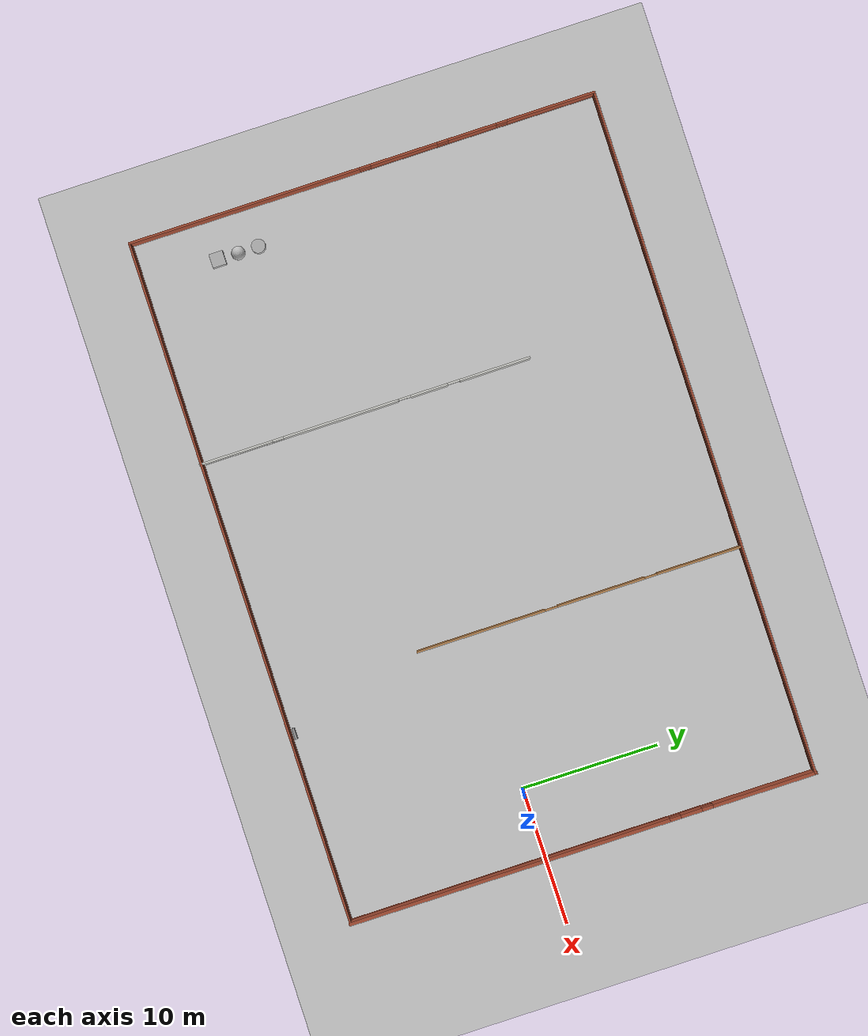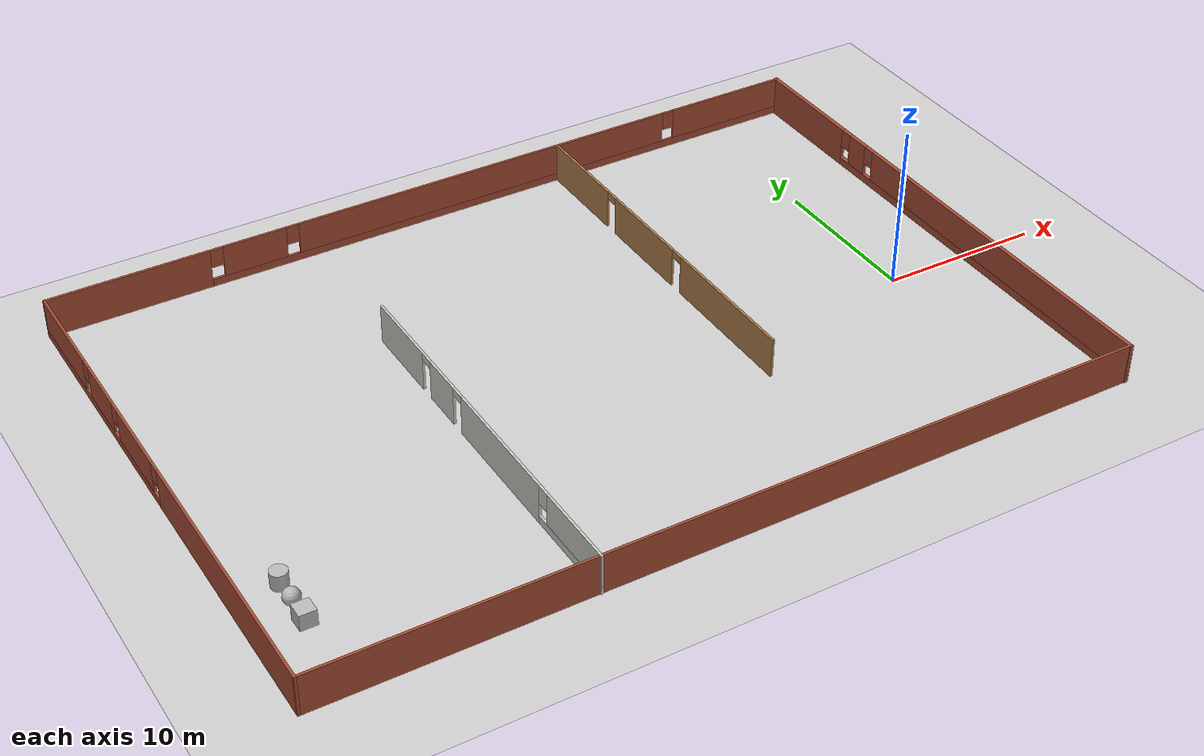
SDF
<sdf version="1.6">
 <world name="default">
  <light name="sun" type="directional">
   <pose>0 0 10 0 -0 0</pose>
   <diffuse>0.8 0.8 0.8 1</diffuse>
   <specular>0.1 0.1 0.1 1</specular>
   <attenuation>
    <range>1000</range>
    <constant>0.9</constant>
    <linear>0.01</linear>
    <quadratic>0.001</quadratic>
   </attenuation>
   <direction>-0.5 0.5 -1</direction>
  </light>
  <model name="ground_plane">
   <static>1</static>
   <link name="link">
    <collision name="collision">
     <geometry><plane><normal>0 0 1</normal><size>100 100</size></plane></geometry>
     <surface><friction><ode><mu>100</mu><mu2>50</mu2></ode></friction></surface>
    </collision>
    <visual name="visual">
     <cast_shadows>0</cast_shadows>
     <geometry><plane><normal>0 0 1</normal><size>100 100</size></plane></geometry>
     <material>
      <script><uri>file://media/materials/scripts/gazebo.material</uri><name>Gazebo/Grey</name></script>
     </material>
    </visual>
   </link>
  </model>
  <gravity>0 0 -9.8</gravity>
  <magnetic_field>6e-06 2.3e-05 -4.2e-05</magnetic_field>
  <atmosphere type="adiabatic"/>
  <physics name="default_physics" default="0" type="ode">
   <max_step_size>0.001</max_step_size>
   <real_time_factor>1</real_time_factor>
   <real_time_update_rate>1000</real_time_update_rate>
  </physics>
  <scene><ambient>0.4 0.4 0.4 1</ambient><background>0.7 0.7 0.7 1</background><shadows>1</shadows></scene>
  <spherical_coordinates>
   <surface_model>EARTH_WGS84</surface_model>
   <latitude_deg>0</latitude_deg>
   <longitude_deg>0</longitude_deg>
   <elevation>0</elevation>
   <heading_deg>0</heading_deg>
  </spherical_coordinates>
  <model name="building_2">
   <pose>-19.7992 2.75157 0 0 -0 0</pose>
   <link name="Wall_0">
    <pose>-24.9808 0.000427 0 0 -0 1.5708</pose>
    <visual name="Wall_0_Visual_0">
     <pose>-8.65096 0 1.25 0 -0 0</pose>
     <geometry><box><size>16.9481 0.15 2.5</size></box></geometry>
     <material>
      <script><uri>file://media/materials/scripts/gazebo.material</uri><name>Gazebo/Bricks</name></script>
      <ambient>1 1 1 1</ambient>
     </material>
    </visual>
    <collision name="Wall_0_Collision_0">
     <geometry><box><size>16.9481 0.15 2.5</size></box></geometry>
     <pose>-8.65096 0 1.25 0 -0 0</pose>
    </collision>
    <visual name="Wall_0_Visual_1">
     <pose>8.47404 0 0.25 0 -0 0</pose>
     <geometry><box><size>17.3019 0.15 0.5</size></box></geometry>
     <material>
      <script><uri>file://media/materials/scripts/gazebo.material</uri><name>Gazebo/Bricks</name></script>
      <ambient>1 1 1 1</ambient>
     </material>
    </visual>
    <collision name="Wall_0_Collision_1">
     <geometry><box><size>17.3019 0.15 0.5</size></box></geometry>
     <pose>8.47404 0 0.25 0 -0 0</pose>
    </collision>
    <visual name="Wall_0_Visual_2">
     <pose>3.06943 0 1.5 0 -0 0</pose>
     <geometry><box><size>4.89271 0.15 2</size></box></geometry>
     <material>
      <script><uri>file://media/materials/scripts/gazebo.material</uri><name>Gazebo/Bricks</name></script>
      <ambient>1 1 1 1</ambient>
     </material>
    </visual>
    <collision name="Wall_0_Collision_2">
     <geometry><box><size>4.89271 0.15 2</size></box></geometry>
     <pose>3.06943 0 1.5 0 -0 0</pose>
    </collision>
    <visual name="Wall_0_Visual_3">
     <pose>8.08149 0 1.5 0 -0 0</pose>
     <geometry><box><size>3.53141 0.15 2</size></box></geometry>
     <material>
      <script><uri>file://media/materials/scripts/gazebo.material</uri><name>Gazebo/Bricks</name></script>
      <ambient>1 1 1 1</ambient>
     </material>
    </visual>
    <collision name="Wall_0_Collision_3">
     <geometry><box><size>3.53141 0.15 2</size></box></geometry>
     <pose>8.08149 0 1.5 0 -0 0</pose>
    </collision>
    <visual name="Wall_0_Visual_4">
     <pose>13.8861 0 1.5 0 -0 0</pose>
     <geometry><box><size>6.47781 0.15 2</size></box></geometry>
     <material>
      <script><uri>file://media/materials/scripts/gazebo.material</uri><name>Gazebo/Bricks</name></script>
      <ambient>1 1 1 1</ambient>
     </material>
    </visual>
    <collision name="Wall_0_Collision_4">
     <geometry><box><size>6.47781 0.15 2</size></box></geometry>
     <pose>13.8861 0 1.5 0 -0 0</pose>
    </collision>
    <visual name="Wall_0_Visual_5">
     <pose>0.223075 0 1.9 0 -0 0</pose>
     <geometry><box><size>0.8 0.15 1.2</size></box></geometry>
     <material>
      <script><uri>file://media/materials/scripts/gazebo.material</uri><name>Gazebo/Bricks</name></script>
      <ambient>1 1 1 1</ambient>
     </material>
    </visual>
    <collision name="Wall_0_Collision_5">
     <geometry><box><size>0.8 0.15 1.2</size></box></geometry>
     <pose>0.223075 0 1.9 0 -0 0</pose>
    </collision>
    <visual name="Wall_0_Visual_6">
     <pose>5.91578 0 1.9 0 -0 0</pose>
     <geometry><box><size>0.8 0.15 1.2</size></box></geometry>
     <material>
      <script><uri>file://media/materials/scripts/gazebo.material</uri><name>Gazebo/Bricks</name></script>
      <ambient>1 1 1 1</ambient>
     </material>
    </visual>
    <collision name="Wall_0_Collision_6">
     <geometry><box><size>0.8 0.15 1.2</size></box></geometry>
     <pose>5.91578 0 1.9 0 -0 0</pose>
    </collision>
    <visual name="Wall_0_Visual_7">
     <pose>10.2472 0 1.9 0 -0 0</pose>
     <geometry><box><size>0.8 0.15 1.2</size></box></geometry>
     <material>
      <script><uri>file://media/materials/scripts/gazebo.material</uri><name>Gazebo/Bricks</name></script>
      <ambient>1 1 1 1</ambient>
     </material>
    </visual>
    <collision name="Wall_0_Collision_7">
     <geometry><box><size>0.8 0.15 1.2</size></box></geometry>
     <pose>10.2472 0 1.9 0 -0 0</pose>
    </collision>
   </link>
   <link name="Wall_1">
    <pose>-0.02484 17.0504 0 0 -0 0</pose>
    <visual name="Wall_1_Visual_0">
     <pose>-20.0058 0 1.25 0 -0 0</pose>
     <geometry><box><size>10.0505 0.15 2.5</size></box></geometry>
     <material>
      <script><uri>file://media/materials/scripts/gazebo.material</uri><name>Gazebo/Bricks</name></script>
      <ambient>1 1 1 1</ambient>
     </material>
    </visual>
    <collision name="Wall_1_Collision_0">
     <geometry><box><size>10.0505 0.15 2.5</size></box></geometry>
     <pose>-20.0058 0 1.25 0 -0 0</pose>
    </collision>
    <visual name="Wall_1_Visual_1">
     <pose>5.02523 0 0.25 0 -0 0</pose>
     <geometry><box><size>40.0115 0.15 0.5</size></box></geometry>
     <material>
      <script><uri>file://media/materials/scripts/gazebo.material</uri><name>Gazebo/Bricks</name></script>
      <ambient>1 1 1 1</ambient>
     </material>
    </visual>
    <collision name="Wall_1_Collision_1">
     <geometry><box><size>40.0115 0.15 0.5</size></box></geometry>
     <pose>5.02523 0 0.25 0 -0 0</pose>
    </collision>
    <visual name="Wall_1_Visual_2">
     <pose>-12.1673 0 1.5 0 -0 0</pose>
     <geometry><box><size>4.02643 0.15 2</size></box></geometry>
     <material>
      <script><uri>file://media/materials/scripts/gazebo.material</uri><name>Gazebo/Bricks</name></script>
      <ambient>1 1 1 1</ambient>
     </material>
    </visual>
    <collision name="Wall_1_Collision_2">
     <geometry><box><size>4.02643 0.15 2</size></box></geometry>
     <pose>-12.1673 0 1.5 0 -0 0</pose>
    </collision>
    <visual name="Wall_1_Visual_3">
     <pose>3.36386 0 1.5 0 -0 0</pose>
     <geometry><box><size>25.436 0.15 2</size></box></geometry>
     <material>
      <script><uri>file://media/materials/scripts/gazebo.material</uri><name>Gazebo/Bricks</name></script>
      <ambient>1 1 1 1</ambient>
     </material>
    </visual>
    <collision name="Wall_1_Collision_3">
     <geometry><box><size>25.436 0.15 2</size></box></geometry>
     <pose>3.36386 0 1.5 0 -0 0</pose>
    </collision>
    <visual name="Wall_1_Visual_4">
     <pose>20.9564 0 1.5 0 -0 0</pose>
     <geometry><box><size>8.14916 0.15 2</size></box></geometry>
     <material>
      <script><uri>file://media/materials/scripts/gazebo.material</uri><name>Gazebo/Bricks</name></script>
      <ambient>1 1 1 1</ambient>
     </material>
    </visual>
    <collision name="Wall_1_Collision_4">
     <geometry><box><size>8.14916 0.15 2</size></box></geometry>
     <pose>20.9564 0 1.5 0 -0 0</pose>
    </collision>
    <visual name="Wall_1_Visual_5">
     <pose>-14.5805 0 1.9 0 -0 0</pose>
     <geometry><box><size>0.8 0.15 1.2</size></box></geometry>
     <material>
      <script><uri>file://media/materials/scripts/gazebo.material</uri><name>Gazebo/Bricks</name></script>
      <ambient>1 1 1 1</ambient>
     </material>
    </visual>
    <collision name="Wall_1_Collision_5">
     <geometry><box><size>0.8 0.15 1.2</size></box></geometry>
     <pose>-14.5805 0 1.9 0 -0 0</pose>
    </collision>
    <visual name="Wall_1_Visual_6">
     <pose>-9.75412 0 1.9 0 -0 0</pose>
     <geometry><box><size>0.8 0.15 1.2</size></box></geometry>
     <material>
      <script><uri>file://media/materials/scripts/gazebo.material</uri><name>Gazebo/Bricks</name></script>
      <ambient>1 1 1 1</ambient>
     </material>
    </visual>
    <collision name="Wall_1_Collision_6">
     <geometry><box><size>0.8 0.15 1.2</size></box></geometry>
     <pose>-9.75412 0 1.9 0 -0 0</pose>
    </collision>
    <visual name="Wall_1_Visual_7">
     <pose>16.4818 0 1.9 0 -0 0</pose>
     <geometry><box><size>0.8 0.15 1.2</size></box></geometry>
     <material>
      <script><uri>file://media/materials/scripts/gazebo.material</uri><name>Gazebo/Bricks</name></script>
      <ambient>1 1 1 1</ambient>
     </material>
    </visual>
    <collision name="Wall_1_Collision_7">
     <geometry><box><size>0.8 0.15 1.2</size></box></geometry>
     <pose>16.4818 0 1.9 0 -0 0</pose>
    </collision>
   </link>
   <link name="Wall_2">
    <pose>24.9312 0.000427 0 0 0 -1.5708</pose>
    <visual name="Wall_2_Visual_0">
     <pose>-13.3542 0 1.25 0 -0 0</pose>
     <geometry><box><size>7.6416 0.25 2.5</size></box></geometry>
     <material>
      <script><uri>file://media/materials/scripts/gazebo.material</uri><name>Gazebo/Bricks</name></script>
      <ambient>1 1 1 1</ambient>
     </material>
    </visual>
    <collision name="Wall_2_Collision_0">
     <geometry><box><size>7.6416 0.25 2.5</size></box></geometry>
     <pose>-13.3542 0 1.25 0 -0 0</pose>
    </collision>
    <visual name="Wall_2_Visual_1">
     <pose>3.8208 0 0.25 0 -0 0</pose>
     <geometry><box><size>26.7084 0.25 0.5</size></box></geometry>
     <material>
      <script><uri>file://media/materials/scripts/gazebo.material</uri><name>Gazebo/Bricks</name></script>
      <ambient>1 1 1 1</ambient>
     </material>
    </visual>
    <collision name="Wall_2_Collision_1">
     <geometry><box><size>26.7084 0.25 0.5</size></box></geometry>
     <pose>3.8208 0 0.25 0 -0 0</pose>
    </collision>
    <visual name="Wall_2_Visual_2">
     <pose>-7.95773 0 1.5 0 -0 0</pose>
     <geometry><box><size>1.55134 0.25 2</size></box></geometry>
     <material>
      <script><uri>file://media/materials/scripts/gazebo.material</uri><name>Gazebo/Bricks</name></script>
      <ambient>1 1 1 1</ambient>
     </material>
    </visual>
    <collision name="Wall_2_Collision_2">
     <geometry><box><size>1.55134 0.25 2</size></box></geometry>
     <pose>-7.95773 0 1.5 0 -0 0</pose>
    </collision>
    <visual name="Wall_2_Visual_3">
     <pose>5.39647 0 1.5 0 -0 0</pose>
     <geometry><box><size>23.5571 0.25 2</size></box></geometry>
     <material>
      <script><uri>file://media/materials/scripts/gazebo.material</uri><name>Gazebo/Bricks</name></script>
      <ambient>1 1 1 1</ambient>
     </material>
    </visual>
    <collision name="Wall_2_Collision_3">
     <geometry><box><size>23.5571 0.25 2</size></box></geometry>
     <pose>5.39647 0 1.5 0 -0 0</pose>
    </collision>
    <visual name="Wall_2_Visual_4">
     <pose>-9.1334 0 1.9 0 -0 0</pose>
     <geometry><box><size>0.8 0.25 1.2</size></box></geometry>
     <material>
      <script><uri>file://media/materials/scripts/gazebo.material</uri><name>Gazebo/Bricks</name></script>
      <ambient>1 1 1 1</ambient>
     </material>
    </visual>
    <collision name="Wall_2_Collision_4">
     <geometry><box><size>0.8 0.25 1.2</size></box></geometry>
     <pose>-9.1334 0 1.9 0 -0 0</pose>
    </collision>
    <visual name="Wall_2_Visual_5">
     <pose>-6.78207 0 1.9 0 -0 0</pose>
     <geometry><box><size>0.8 0.25 1.2</size></box></geometry>
     <material>
      <script><uri>file://media/materials/scripts/gazebo.material</uri><name>Gazebo/Bricks</name></script>
      <ambient>1 1 1 1</ambient>
     </material>
    </visual>
    <collision name="Wall_2_Collision_5">
     <geometry><box><size>0.8 0.25 1.2</size></box></geometry>
     <pose>-6.78207 0 1.9 0 -0 0</pose>
    </collision>
   </link>
   <link name="Wall_3">
    <collision name="Wall_3_Collision">
     <geometry><box><size>50.0626 0.15 2.5</size></box></geometry>
     <pose>0 0 1.25 0 -0 0</pose>
    </collision>
    <visual name="Wall_3_Visual">
     <pose>0 0 1.25 0 -0 0</pose>
     <geometry><box><size>50.0626 0.15 2.5</size></box></geometry>
     <material>
      <script><uri>file://media/materials/scripts/gazebo.material</uri><name>Gazebo/Bricks</name></script>
      <ambient>1 1 1 1</ambient>
     </material>
    </visual>
    <pose>-0.02484 -17.0496 0 0 -0 3.14159</pose>
   </link>
   <link name="Wall_5">
    <pose>-8.79201 -5.05043 0 0 0 -1.5708</pose>
    <visual name="Wall_5_Visual_0">
     <pose>-9.54324 0 1.25 0 -0 0</pose>
     <geometry><box><size>5.16353 0.15 2.5</size></box></geometry>
     <material>
      <script><uri>file://media/materials/scripts/gazebo.material</uri><name>Gazebo/CeilingTiled</name></script>
      <ambient>1 1 1 1</ambient>
     </material>
    </visual>
    <collision name="Wall_5_Collision_0">
     <geometry><box><size>5.16353 0.15 2.5</size></box></geometry>
     <pose>-9.54324 0 1.25 0 -0 0</pose>
    </collision>
    <visual name="Wall_5_Visual_1">
     <pose>-4.71703 0 1.25 0 -0 0</pose>
     <geometry><box><size>2.68888 0.15 2.5</size></box></geometry>
     <material>
      <script><uri>file://media/materials/scripts/gazebo.material</uri><name>Gazebo/CeilingTiled</name></script>
      <ambient>1 1 1 1</ambient>
     </material>
    </visual>
    <collision name="Wall_5_Collision_1">
     <geometry><box><size>2.68888 0.15 2.5</size></box></geometry>
     <pose>-4.71703 0 1.25 0 -0 0</pose>
    </collision>
    <visual name="Wall_5_Visual_2">
     <pose>1.7432 0 1.25 0 -0 0</pose>
     <geometry><box><size>8.43159 0.15 2.5</size></box></geometry>
     <material>
      <script><uri>file://media/materials/scripts/gazebo.material</uri><name>Gazebo/CeilingTiled</name></script>
      <ambient>1 1 1 1</ambient>
     </material>
    </visual>
    <collision name="Wall_5_Collision_2">
     <geometry><box><size>8.43159 0.15 2.5</size></box></geometry>
     <pose>1.7432 0 1.25 0 -0 0</pose>
    </collision>
    <visual name="Wall_5_Visual_3">
     <pose>9.042 0 0.25 0 -0 0</pose>
     <geometry><box><size>6.166 0.15 0.5</size></box></geometry>
     <material>
      <script><uri>file://media/materials/scripts/gazebo.material</uri><name>Gazebo/CeilingTiled</name></script>
      <ambient>1 1 1 1</ambient>
     </material>
    </visual>
    <collision name="Wall_5_Collision_3">
     <geometry><box><size>6.166 0.15 0.5</size></box></geometry>
     <pose>9.042 0 0.25 0 -0 0</pose>
    </collision>
    <visual name="Wall_5_Visual_4">
     <pose>9.442 0 1.5 0 -0 0</pose>
     <geometry><box><size>5.366 0.15 2</size></box></geometry>
     <material>
      <script><uri>file://media/materials/scripts/gazebo.material</uri><name>Gazebo/CeilingTiled</name></script>
      <ambient>1 1 1 1</ambient>
     </material>
    </visual>
    <collision name="Wall_5_Collision_4">
     <geometry><box><size>5.366 0.15 2</size></box></geometry>
     <pose>9.442 0 1.5 0 -0 0</pose>
    </collision>
    <visual name="Wall_5_Visual_5">
     <pose>6.359 0 1.9 0 -0 0</pose>
     <geometry><box><size>0.8 0.15 1.2</size></box></geometry>
     <material>
      <script><uri>file://media/materials/scripts/gazebo.material</uri><name>Gazebo/CeilingTiled</name></script>
      <ambient>1 1 1 1</ambient>
     </material>
    </visual>
    <collision name="Wall_5_Collision_5">
     <geometry><box><size>0.8 0.15 1.2</size></box></geometry>
     <pose>6.359 0 1.9 0 -0 0</pose>
    </collision>
    <visual name="Wall_5_Visual_6">
     <pose>-6.51147 0 2.25 0 -0 0</pose>
     <geometry><box><size>0.9 0.15 0.5</size></box></geometry>
     <material>
      <script><uri>file://media/materials/scripts/gazebo.material</uri><name>Gazebo/CeilingTiled</name></script>
      <ambient>1 1 1 1</ambient>
     </material>
    </visual>
    <collision name="Wall_5_Collision_6">
     <geometry><box><size>0.9 0.15 0.5</size></box></geometry>
     <pose>-6.51147 0 2.25 0 -0 0</pose>
    </collision>
    <visual name="Wall_5_Visual_7">
     <pose>-2.92259 0 2.25 0 -0 0</pose>
     <geometry><box><size>0.9 0.15 0.5</size></box></geometry>
     <material>
      <script><uri>file://media/materials/scripts/gazebo.material</uri><name>Gazebo/CeilingTiled</name></script>
      <ambient>1 1 1 1</ambient>
     </material>
    </visual>
    <collision name="Wall_5_Collision_7">
     <geometry><box><size>0.9 0.15 0.5</size></box></geometry>
     <pose>-2.92259 0 2.25 0 -0 0</pose>
    </collision>
   </link>
   <link name="Wall_7">
    <pose>8.33244 5.08792 0 0 0 -1.5708</pose>
    <visual name="Wall_7_Visual_0">
     <pose>-8.80423 0 1.25 0 -0 0</pose>
     <geometry><box><size>6.14155 0.15 2.5</size></box></geometry>
     <material>
      <script><uri>file://media/materials/scripts/gazebo.material</uri><name>Gazebo/Wood</name></script>
      <ambient>1 1 1 1</ambient>
     </material>
    </visual>
    <collision name="Wall_7_Collision_0">
     <geometry><box><size>6.14155 0.15 2.5</size></box></geometry>
     <pose>-8.80423 0 1.25 0 -0 0</pose>
    </collision>
    <visual name="Wall_7_Visual_1">
     <pose>-1.63269 0 1.25 0 -0 0</pose>
     <geometry><box><size>6.40152 0.15 2.5</size></box></geometry>
     <material>
      <script><uri>file://media/materials/scripts/gazebo.material</uri><name>Gazebo/Wood</name></script>
      <ambient>1 1 1 1</ambient>
     </material>
    </visual>
    <collision name="Wall_7_Collision_1">
     <geometry><box><size>6.40152 0.15 2.5</size></box></geometry>
     <pose>-1.63269 0 1.25 0 -0 0</pose>
    </collision>
    <visual name="Wall_7_Visual_2">
     <pose>7.17153 0 1.25 0 -0 0</pose>
     <geometry><box><size>9.40693 0.15 2.5</size></box></geometry>
     <material>
      <script><uri>file://media/materials/scripts/gazebo.material</uri><name>Gazebo/Wood</name></script>
      <ambient>1 1 1 1</ambient>
     </material>
    </visual>
    <collision name="Wall_7_Collision_2">
     <geometry><box><size>9.40693 0.15 2.5</size></box></geometry>
     <pose>7.17153 0 1.25 0 -0 0</pose>
    </collision>
    <visual name="Wall_7_Visual_3">
     <pose>-5.28345 0 2.25 0 -0 0</pose>
     <geometry><box><size>0.9 0.15 0.5</size></box></geometry>
     <material>
      <script><uri>file://media/materials/scripts/gazebo.material</uri><name>Gazebo/Wood</name></script>
      <ambient>1 1 1 1</ambient>
     </material>
    </visual>
    <collision name="Wall_7_Collision_3">
     <geometry><box><size>0.9 0.15 0.5</size></box></geometry>
     <pose>-5.28345 0 2.25 0 -0 0</pose>
    </collision>
    <visual name="Wall_7_Visual_4">
     <pose>2.01807 0 2.25 0 -0 0</pose>
     <geometry><box><size>0.9 0.15 0.5</size></box></geometry>
     <material>
      <script><uri>file://media/materials/scripts/gazebo.material</uri><name>Gazebo/Wood</name></script>
      <ambient>1 1 1 1</ambient>
     </material>
    </visual>
    <collision name="Wall_7_Collision_4">
     <geometry><box><size>0.9 0.15 0.5</size></box></geometry>
     <pose>2.01807 0 2.25 0 -0 0</pose>
    </collision>
   </link>
   <link name="Window_5">
    <collision name="Window_5_Collision">
     <geometry><box><size>0.8 0.17 0.8</size></box></geometry>
     <pose>0 0 0.4 0 -0 0</pose>
    </collision>
    <visual name="Window_5_Visual">
     <pose>0 0 0.4 0 -0 0</pose>
     <geometry><box><size>0.8 0.17 0.8</size></box></geometry>
     <material>
      <script><uri>file://media/materials/scripts/gazebo.material</uri><name>Gazebo/Grey</name></script>
     </material>
    </visual>
    <pose>11.1356 -16.7309 0.5 0 -0 0</pose>
   </link>
   <static>1</static>
  </model>
  <model name="textured_shapes">
   <pose>-41.9578 -7.34297 0.5 0 -0 0</pose>
   <link name="box">
    <pose>0 -1.5 0 0 -0 0</pose>
    <collision name="collision"><geometry><box><size>1 1 1</size></box></geometry></collision>
    <visual name="visual">
     <geometry><box><size>1 1 1</size></box></geometry>
     <material>
      <script>
       <uri>model://textured_shapes/materials/scripts</uri>
       <uri>model://textured_shapes/materials/textures</uri>
       <name>TexturedShape/Squares</name>
      </script>
     </material>
    </visual>
    <inertial>
     <inertia><ixx>1</ixx><ixy>0</ixy><ixz>0</ixz><iyy>1</iyy><iyz>0</iyz><izz>1</izz></inertia>
     <mass>1</mass>
    </inertial>
   </link>
   <link name="sphere">
    <collision name="collision"><geometry><sphere><radius>0.5</radius></sphere></geometry></collision>
    <visual name="visual">
     <geometry><sphere><radius>0.5</radius></sphere></geometry>
     <material>
      <script>
       <uri>model://textured_shapes/materials/scripts</uri>
       <uri>model://textured_shapes/materials/textures</uri>
       <name>TexturedShape/Squares</name>
      </script>
     </material>
    </visual>
    <inertial>
     <inertia><ixx>1</ixx><ixy>0</ixy><ixz>0</ixz><iyy>1</iyy><iyz>0</iyz><izz>1</izz></inertia>
     <mass>1</mass>
    </inertial>
   </link>
   <link name="cylinder">
    <pose>0 1.5 0 0 -0 0</pose>
    <collision name="collision">
     <geometry><cylinder><radius>0.5</radius><length>1</length></cylinder></geometry>
    </collision>
    <visual name="visual">
     <geometry><cylinder><radius>0.5</radius><length>1</length></cylinder></geometry>
     <material>
      <script>
       <uri>model://textured_shapes/materials/scripts</uri>
       <uri>model://textured_shapes/materials/textures</uri>
       <name>TexturedShape/Squares</name>
      </script>
     </material>
    </visual>
    <inertial>
     <inertia><ixx>1</ixx><ixy>0</ixy><ixz>0</ixz><iyy>1</iyy><iyz>0</iyz><izz>1</izz></inertia>
     <mass>1</mass>
    </inertial>
   </link>
  </model>
 </world>
</sdf>
